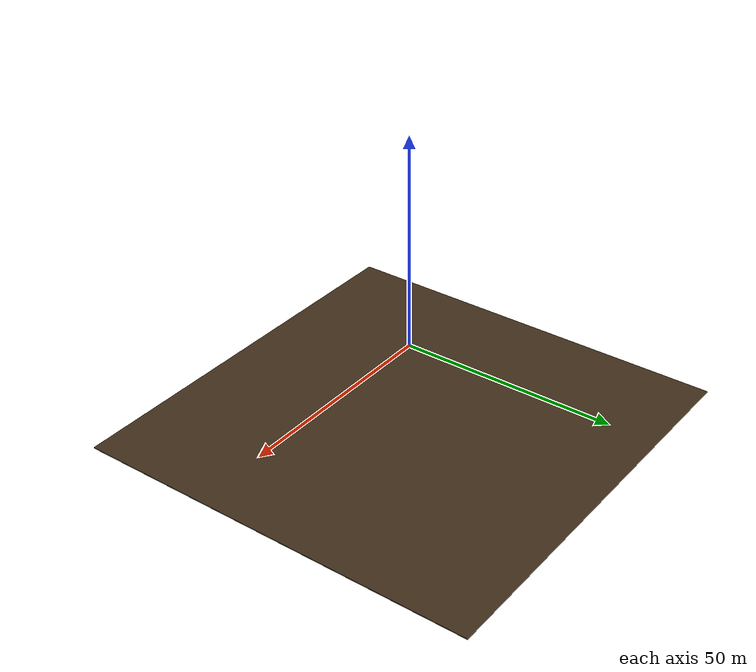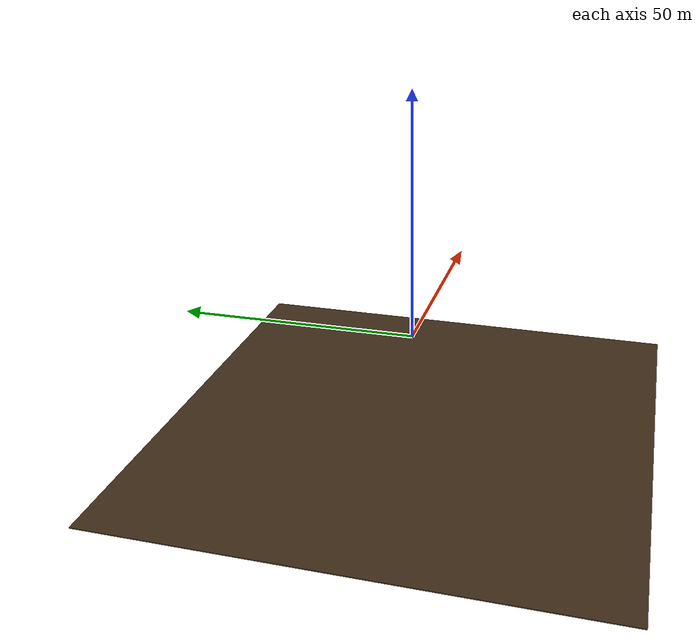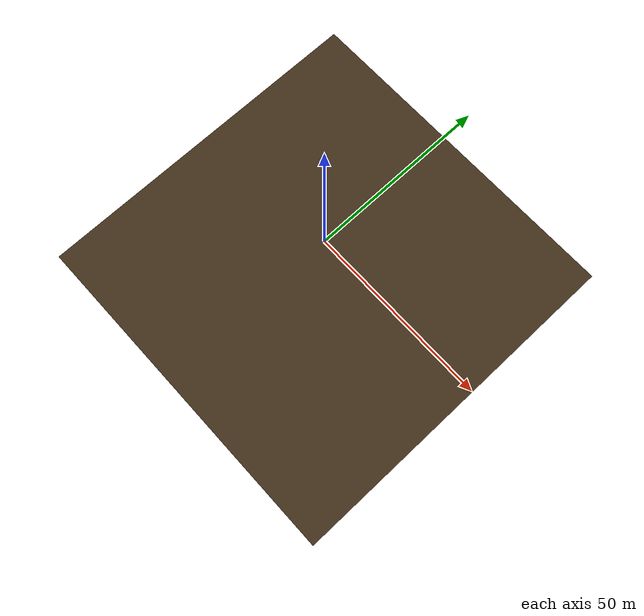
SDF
<sdf version="1.9">
  <world name="rexrov_demo">
    <gravity>0 0 -9.81</gravity>
    <physics name="1ms" type="dart"><max_step_size>0.001</max_step_size><real_time_factor>1.0</real_time_factor></physics>
    <plugin filename="ignition-gazebo-physics-system" name="ignition::gazebo::systems::Physics"/>
    <plugin filename="ignition-gazebo-buoyancy-system" name="ignition::gazebo::systems::Buoyancy">
      <graded_buoyancy><default_density>1025</default_density><density_change><above_depth>0</above_depth><density>1</density></density_change></graded_buoyancy>
    </plugin>
    <plugin filename="ignition-gazebo-user-commands-system" name="ignition::gazebo::systems::UserCommands"/>
    <plugin filename="ignition-gazebo-scene-broadcaster-system" name="ignition::gazebo::systems::SceneBroadcaster"/>
    <plugin filename="ignition-gazebo-contact-system" name="ignition::gazebo::systems::Contact"/>
    <light type="directional" name="sun"><pose>0 0 50 0 0 0</pose><direction>0.2 0.2 -1</direction></light>
    <model name="seafloor"><static>true</static><link name="link"><collision name="collision"><geometry><box><size>100 100 0.2</size></box></geometry><pose>0 0 -20 0 0 0</pose></collision><visual name="visual"><geometry><box><size>100 100 0.2</size></box></geometry><pose>0 0 -20 0 0 0</pose><material><ambient>0.25 0.18 0.1 1</ambient></material></visual></link></model>
  </world>
</sdf>
